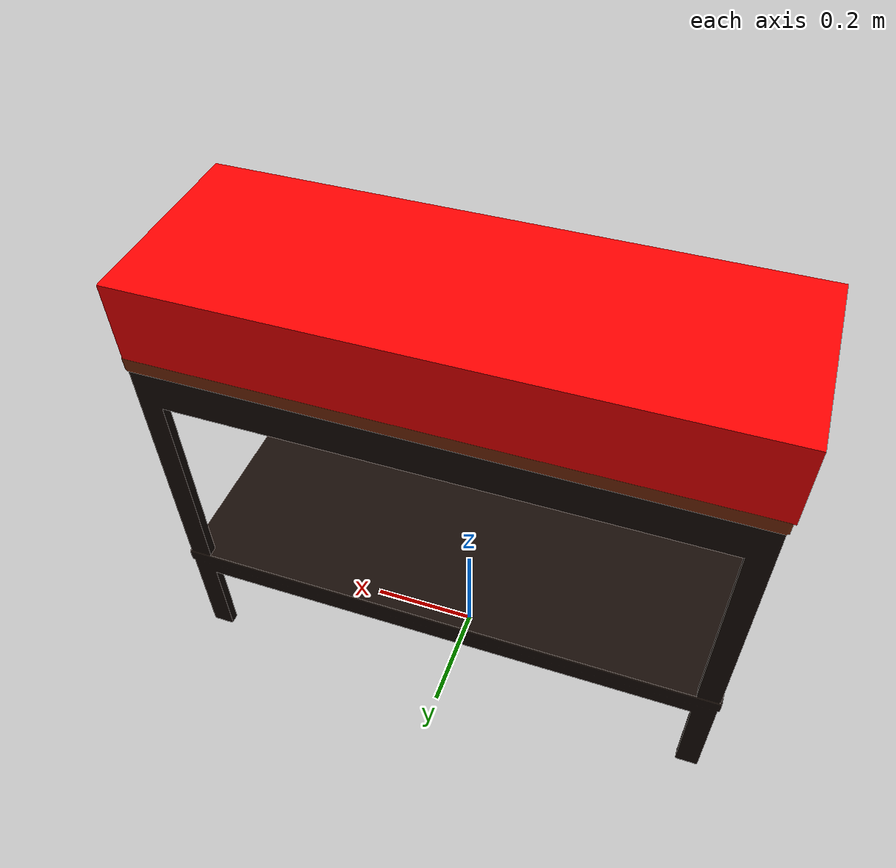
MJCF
<mujoco model="TV_Stand_223_1">
  <compiler autolimits="true" boundmass="0" angle="radian"/>
  <default>
    <default class="/">
      <default class="__VISUAL_MJT__">
        <geom contype="0" conaffinity="0" group="0"/>
      </default>
      <default class="__STRUCTURAL_MJT__">
        <geom contype="8" conaffinity="15" group="4" friction="0.90000000000000002 0.90000000000000002 0.001" solref="0.025000000000000001 1" solimp="0.998 0.998 0.001"/>
      </default>
      <default class="__DYNAMIC_MJT__">
        <geom contype="1" conaffinity="15" group="4" friction="0.90000000000000002 0.90000000000000002 0.001" solref="0.025000000000000001 1" solimp="0.998 0.998 0.001"/>
      </default>
    </default>
  </default>
  <asset>
    <texture name="DarkWoodSmooth2" type="2d" file="assets/narrow/WoodGrains1.png"/>
    <material name="material_DarkWoodSmooth2" class="/" texture="DarkWoodSmooth2" specular="0.5" shininess="0.5" rgba="0.1226415 0.090824130000000003 0.090824130000000003 1"/>
    <texture name="LightWoodCounters3" type="2d" file="assets/narrow/LightWoodCounters.png"/>
    <material name="material_LightWoodCounters3" class="/" texture="LightWoodCounters3" specular="0.5" shininess="0.5" rgba="0.69811319999999999 0.33936349999999998 0.1350124 1"/>
    <mesh name="TV_Stand_223_1_tv_stand_223_0" class="/" file="assets/narrow/TV_Stand_223_1_tv_stand_223/TV_Stand_223_1_tv_stand_223_0.obj" scale="1 1 1"/>
    <mesh name="TV_Stand_223_1_tv_stand_223_1" class="/" file="assets/narrow/TV_Stand_223_1_tv_stand_223/TV_Stand_223_1_tv_stand_223_1.obj" scale="1 1 1"/>
  </asset>
  <worldbody>
    <body name="TV_Stand_223_1" pos="0 0 0.35701834" quat="0 0 0.7071067811865476 0.7071067811865476">
      <joint name="TV_Stand_223_1_free" class="/" type="free" pos="0 0 0" axis="0 0 1" stiffness="0" range="0 0" armature="0" damping="0.10000000000000001" frictionloss="0"/>
      <body name="TV_Stand_223_1_tv_stand_223" pos="0.00296 -0.35647000000000001 0" quat="1 0 0 0">
        <geom name="TV_Stand_223_1_tv_stand_223_0" class="__VISUAL_MJT__" type="mesh" material="material_DarkWoodSmooth2" mesh="TV_Stand_223_1_tv_stand_223_0" mass="0"/>
        <geom name="TV_Stand_223_1_tv_stand_223_1" class="__VISUAL_MJT__" type="mesh" material="material_LightWoodCounters3" mesh="TV_Stand_223_1_tv_stand_223_1" mass="0"/>
        <site name="TV_Stand_223_1_tv_stand_223_ReceptacleCollider_0" class="/" type="box" rgba="1 0 0 1" size="0.50829213857650757 0.069608926773071289 0.1747530996799469" pos="0.0034098029136657715 0.78040891885757446 0" quat="0 1 0 0"/>
        <geom name="TV_Stand_223_1_tv_stand_223_PrimitiveCollider_0" class="__DYNAMIC_MJT__" type="box" size="0.50815099477767944 0.047784425318241119 0.17574666440486908" rgba="0 1 0 1" pos="0.002958834171295166 0.66544824838638306 0" quat="0 1 0 0" density="488.169"/>
        <geom name="TV_Stand_223_1_tv_stand_223_PrimitiveCollider_1" class="__DYNAMIC_MJT__" type="box" size="0.020717272534966469 0.35599240660667419 0.010450122877955437" rgba="0 1 0 1" pos="0.48659324645996094 0.35570552945137024 -0.16500000655651093" quat="0 1 0 0" density="488.169"/>
        <geom name="TV_Stand_223_1_tv_stand_223_PrimitiveCollider_2" class="__DYNAMIC_MJT__" type="box" size="0.020717272534966469 0.35599240660667419 0.010450122877955437" rgba="0 1 0 1" pos="0.48659312725067139 0.35570552945137024 0.16500000655651093" quat="0 1 0 0" density="488.169"/>
        <geom name="TV_Stand_223_1_tv_stand_223_PrimitiveCollider_3" class="__DYNAMIC_MJT__" type="box" size="0.020717272534966469 0.35599240660667419 0.010450122877955437" rgba="0 1 0 1" pos="-0.48140677809715271 0.35570552945137024 0.16499996185302734" quat="0 1 0 0" density="488.169"/>
        <geom name="TV_Stand_223_1_tv_stand_223_PrimitiveCollider_4" class="__DYNAMIC_MJT__" type="box" size="0.020717272534966469 0.35599240660667419 0.010450122877955437" rgba="0 1 0 1" pos="-0.4814068078994751 0.35570552945137024 -0.164000004529953" quat="0 1 0 0" density="488.169"/>
        <geom name="TV_Stand_223_1_tv_stand_223_PrimitiveCollider_5" class="__DYNAMIC_MJT__" type="box" size="0.50815099477767944 0.027611922472715378 0.17574666440486908" rgba="0 1 0 1" pos="0.002958834171295166 0.20584827661514282 0" quat="0 1 0 0" density="488.169"/>
      </body>
    </body>
  </worldbody>
</mujoco>
